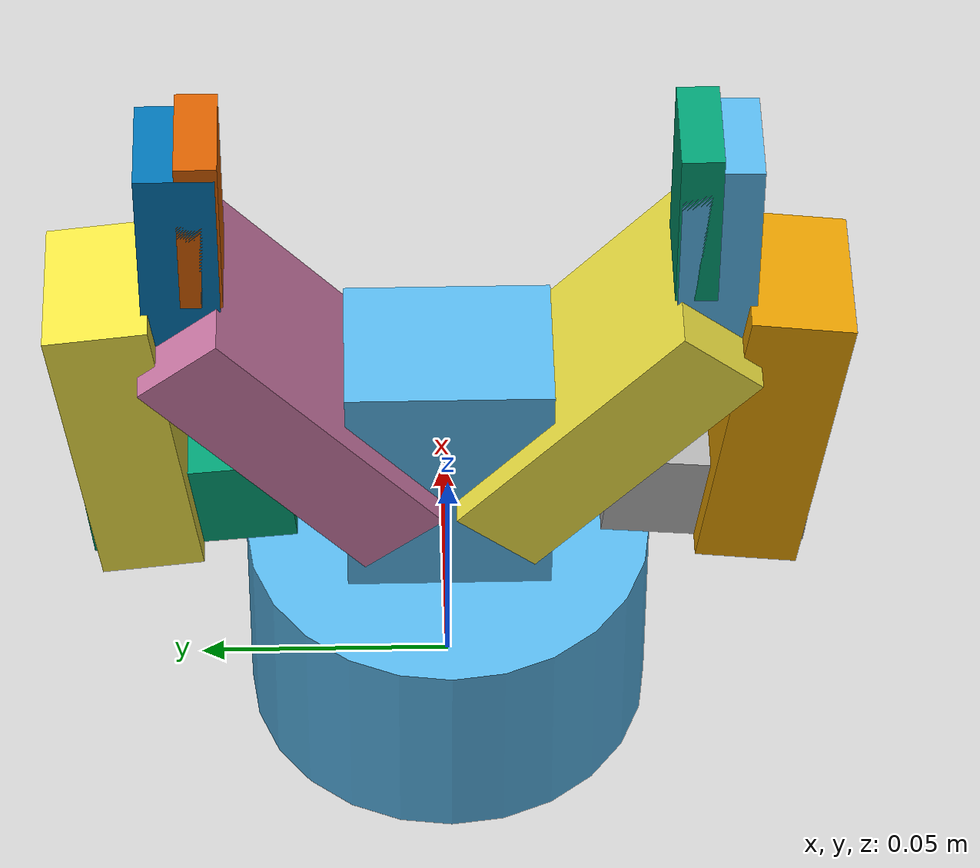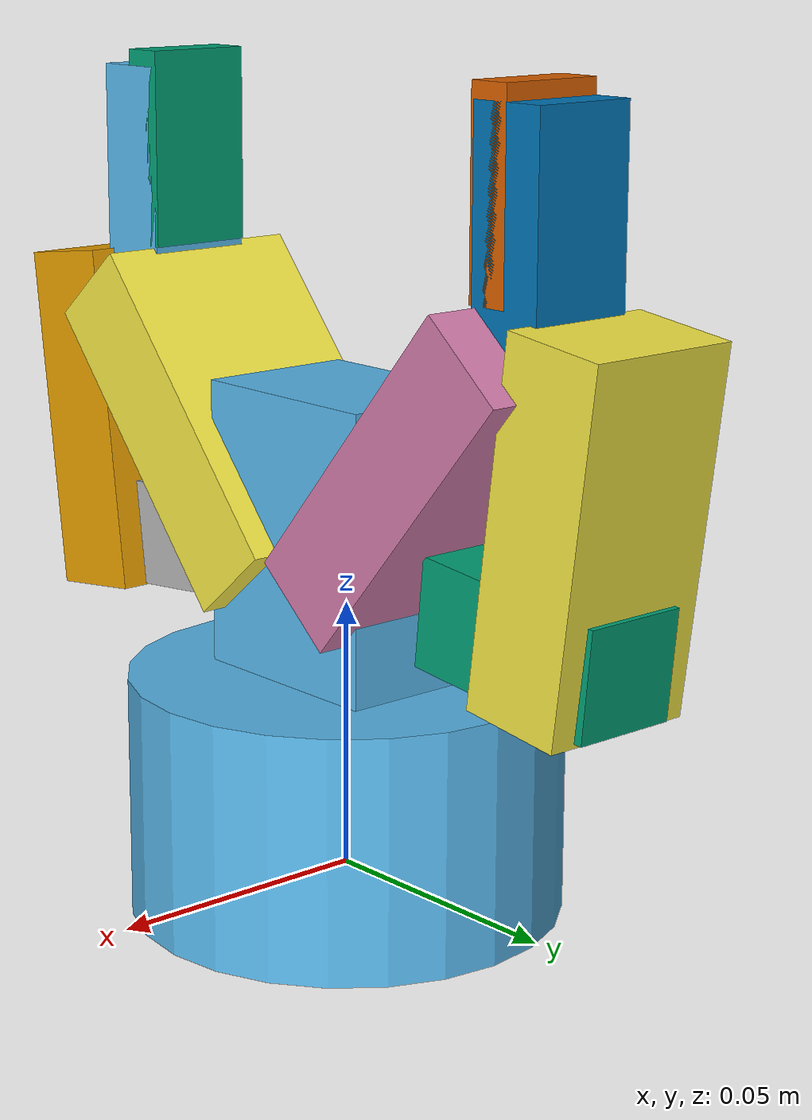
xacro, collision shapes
<?xml version="1.0" ?>
<robot name="example" xmlns:xacro="http://ros.org/wiki/xacro">

	<xacro:include filename="$(find robotiq_2f_model)/model/robotiq_2f_85.urdf.xacro" />

	<link name="world"/>

	<xacro:robotiq_2f_85 name="simple_gripper" joint_name="GRIPPER_JOINT" parent="world" precise_collision="false" adaptive_transmission="false">
		<origin xyz="0 0 0" rpy="0 0 0"/>
	</xacro:robotiq_2f_85>

</robot>

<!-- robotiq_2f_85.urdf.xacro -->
<robot xmlns:xacro="http://ros.org/wiki/xacro">

	<xacro:include filename="$(find robotiq_2f_model)/model/inertias.urdf.xacro" />

	<xacro:macro name="robotiq_2f_85" params="parent joint_name name precise_collision:=false adaptive_transmission:=false with_pads:=true *origin">

                <xacro:property name="gripper_kp" value="1000000.0" />
  		<xacro:property name="gripper_kd" value="1.5" />
  		<xacro:property name="gripper_mu" value="1.2" />

                <xacro:macro name="gazebo_params_gripper" params="name kp kd mu">
    			<gazebo reference="${name}">
      			<kp>${kp}</kp>
      			<kd>${kd}</kd>
      			<mu1>${mu}</mu1>
      			<mu2>${mu}</mu2>
    			</gazebo>
  		</xacro:macro>

		<!-- base -->
		<joint name="${parent}_${name}_BASE_joint" type="fixed">
			<xacro:insert_block name="origin"/>
			<parent link="${parent}"/>
			<child link="${name}_BASE"/>
		</joint>
		<link name="${name}_BASE">
			<inertial>
				<mass value="0.2"/>
				<origin xyz="0 0 ${0.015*0.5}"  />
				<cylinder_inertia radius="0.04" length="0.045" mass="0.2"/>
			</inertial>
			<visual>
				<geometry>
					<mesh filename="package://robotiq_2f_model/model/meshes/2f85/collision/base.stl" scale="0.001 0.001 0.001"/>
				</geometry>
			</visual>
			<xacro:unless value="${precise_collision}">
			<collision>
				<origin xyz="0 0 0.015" rpy="0 0 0"/>
				<geometry>
					<cylinder radius="0.04" length="0.045"/>
				</geometry>
			</collision>
			<collision>
				<origin xyz="0 0 0.06" rpy="0 0 0"/>
				<geometry>
					<box size="0.03 0.04 0.06"/>
				</geometry>
			</collision>
			</xacro:unless>
			<xacro:if value="${precise_collision}">
			<collision>
				<geometry>
					<mesh filename="package://robotiq_2f_model/model/meshes/2f85/collision/base.stl" scale="0.001 0.001 0.001"/>
				</geometry>
			</collision>
			</xacro:if>
		</link>
		<xacro:gazebo_params_gripper name="${name}_BASE" kp ="${gripper_kp}" kd="${gripper_kd}" mu="${gripper_mu}"/>

		<!-- right finger -->

		<joint name="${joint_name}" type="revolute">
			<origin xyz="0 0.0306011 0.054904" rpy="0 0 0"/>
			<parent link="${name}_BASE"/>
			<child link="${name}_right_driver"/>
			<axis xyz="1 0 0"/>
			<limit lower="${0 * 3.141592 / 180}" upper="${50 * 3.141592 / 180}" effort="60" velocity="${110 * 3.141592 / 180}" />
		</joint>
		<link name="${name}_right_driver">
			<inertial>
				<mass value="0.05"/>
				<origin xyz="0 0.02 0" rpy="0 0 0" />
				<box_inertia x_dim="0.02" y_dim="0.04" z_dim="0.02" mass="0.05"/>
			</inertial>
			<visual>
				<geometry>
					<mesh filename="package://robotiq_2f_model/model/meshes/2f85/visual/driver.dae" scale="0.001 0.001 0.001"/>
				</geometry>
			</visual>
			<xacro:unless value="${precise_collision}">
			<collision>
				<origin xyz="0 0.02 0" rpy="-0.1 0 0"/>
				<geometry>
					<box size="0.02 0.04 0.02"/>
				</geometry>
			</collision>
			</xacro:unless>
			<xacro:if value="${precise_collision}">
			<collision>
				<geometry>
					<mesh filename="package://robotiq_2f_model/model/meshes/2f85/collision/driver.stl" scale="0.001 0.001 0.001"/>
				</geometry>
			</collision>
			</xacro:if>
		</link>

		<xacro:unless value="${adaptive_transmission}">
		<joint name="${name}_right_coupler_joint" type="fixed">
			<origin xyz="0 0.0315 -0.0041" rpy="0 0 0"/>
			<parent link="${name}_right_driver"/>
			<child link="${name}_right_coupler"/>
		</joint>
		</xacro:unless>
		<xacro:if value="${adaptive_transmission}">
			<joint name="${name}_right_coupler_joint" type="revolute">
			<origin xyz="0 0.0315 -0.0041" rpy="0 0 0"/>
			<parent link="${name}_right_driver"/>
			<child link="${name}_right_coupler"/>
			<axis xyz="1 0 0"/>
			<limit lower="${-170 * 3.141592 / 180}" upper="${170 * 3.141592 / 180}" effort="176" velocity="${110 * 3.141592 / 180}" />
		</joint>
		</xacro:if>
		<link name="${name}_right_coupler">
			<inertial>
				<mass value="0.05"/>
				<origin xyz="0 0.0 0.025" rpy="-1.7 0 0"/>
				<box_inertia x_dim="0.03" y_dim="0.065" z_dim="0.02" mass="0.05"/>
			</inertial>
			<visual>
				<geometry>
					<mesh filename="package://robotiq_2f_model/model/meshes/2f85/visual/coupler.dae" scale="0.001 0.001 0.001"/>
				</geometry>
			</visual>
			<xacro:unless value="${precise_collision}">
			<collision>
				<origin xyz="0 0.0 0.025" rpy="-1.7 0 0"/>
				<geometry>
					<box size="0.03 0.065 0.02"/>
				</geometry>
			</collision>
			</xacro:unless>
			<xacro:if value="${precise_collision}">
				<collision>
					<geometry>
						<mesh filename="package://robotiq_2f_model/model/meshes/2f85/collision/coupler.stl" scale="0.001 0.001 0.001"/>
					</geometry>
				</collision>
			</xacro:if>
		</link>

		<joint name="${name}_right_follower_joint" type="revolute">
			<origin xyz="0 0.0061 0.0471" rpy="0 0 0"/>
			<parent link="${name}_right_coupler"/>
			<child link="${name}_right_follower"/>
			<axis xyz="1 0 0"/>
			<limit lower="${-170 * 3.141592 / 180}" upper="${170 * 3.141592 / 180}" effort="176" velocity="${110 * 3.141592 / 180}" />

			<xacro:unless value="${adaptive_transmission}">
			<mimic joint="${joint_name}" multiplier="-1"/>
			</xacro:unless>
		</joint>
		<link name="${name}_right_follower">
			<inertial>
				<mass value="0.05"/>
				<origin xyz="0 -0.018 0.022" />
				<box_inertia x_dim="0.02" y_dim="0.015" z_dim="0.048" mass="0.05"/>
			</inertial>
			<visual>
				<geometry>
					<mesh filename="package://robotiq_2f_model/model/meshes/2f85/visual/follower.dae" scale="0.001 0.001 0.001"/>
				</geometry>
			</visual>
			<xacro:unless value="${precise_collision}">
			<collision>
				<origin xyz="0 -0.018 0.022" rpy="0 0 0"/>
				<geometry>
					<box size="0.02 0.015 0.048"/>
				</geometry>
			</collision>
			</xacro:unless>
			<xacro:if value="${precise_collision}">
			<collision>
				<geometry>
					<mesh filename="package://robotiq_2f_model/model/meshes/2f85/collision/follower.stl" scale="0.001 0.001 0.001"/>
				</geometry>
			</collision>
			</xacro:if>
		</link>

		<xacro:if value="${with_pads}">
			<joint name="${name}_right_pad_joint" type="fixed">
				<parent link="${name}_right_follower"/>
				<child link="${name}_right_pad"/>
			</joint>
			<link name="${name}_right_pad">
				<inertial>
					<mass value="0.01"/>
					<origin xyz="0 -0.022 0.031" />
					<box_inertia x_dim="0.02" y_dim="0.008" z_dim="0.036" mass="0.01"/>
				</inertial>
				<visual>
					<geometry>
						<mesh filename="package://robotiq_2f_model/model/meshes/2f85/visual/pad.dae" scale="0.001 0.001 0.001"/>
					</geometry>
				</visual>
				<xacro:unless value="${precise_collision}">
				<collision>
					<origin xyz="0 -0.022 0.031" rpy="0 0 0"/>
					<geometry>
						<box size="0.02 0.008 0.036"/>
					</geometry>
				</collision>
				</xacro:unless>
				<xacro:if value="${precise_collision}">
				<collision>
					<geometry>
						<mesh filename="package://robotiq_2f_model/model/meshes/2f85/collision/pad.stl" scale="0.001 0.001 0.001"/>
					</geometry>
				</collision>
				</xacro:if>
			</link>
			<xacro:gazebo_params_gripper name="${name}_right_pad" kp ="${gripper_kp}" kd="${gripper_kd}" mu="${gripper_mu}"/>
		</xacro:if>

		<joint name="${name}_right_spring_link_joint" type="revolute">
			<origin xyz="0 0.012 0.0614" rpy="0 0 0"/>
			<parent link="${name}_BASE"/>
			<child link="${name}_right_spring_link"/>
			<axis xyz="1 0 0"/>
			<limit lower="${-170 * 3.141592 / 180}" upper="${170 * 3.141592 / 180}" effort="176" velocity="${110 * 3.141592 / 180}" />

			<xacro:unless value="${adaptive_transmission}">
			<mimic joint="${joint_name}" multiplier="1"/>
			</xacro:unless>
		</joint>
		<link name="${name}_right_spring_link">
			<inertial>
				<mass value="0.05"/>
				<origin xyz="0 0.018 0.018" rpy="-0.7068 0 0"/>
				<box_inertia x_dim="0.04" y_dim="0.02" z_dim="0.065" mass="0.05"/>
			</inertial>
			<visual>
				<geometry>
					<mesh filename="package://robotiq_2f_model/model/meshes/2f85/visual/spring_link.dae" scale="0.001 0.001 0.001"/>
				</geometry>
			</visual>
			<xacro:unless value="${precise_collision}">
			<collision>
				<origin xyz="0 0.018 0.018" rpy="-0.7068 0 0"/>
				<geometry>
					<box size="0.04 0.02 0.065"/>
				</geometry>
			</collision>
			</xacro:unless>
			<xacro:if value="${precise_collision}">
			<collision>
				<geometry>
					<mesh filename="package://robotiq_2f_model/model/meshes/2f85/collision/spring_link.stl" scale="0.001 0.001 0.001"/>
				</geometry>
			</collision>
			</xacro:if>
		</link>

		<!-- left finger -->

		<joint name="${name}_left_driver_joint" type="revolute">
			<origin xyz="0 -0.0306011 0.054904" rpy="0 0 3.141592653589793"/>
			<parent link="${name}_BASE"/>
			<child link="${name}_left_driver"/>
			<axis xyz="1 0 0"/>
			<limit lower="${0 * 3.141592 / 180}" upper="${50 * 3.141592 / 180}" effort="176" velocity="${110 * 3.141592 / 180}" />

			<xacro:unless value="${adaptive_transmission}">
			<mimic joint="${joint_name}" multiplier="1"/>
			</xacro:unless>
		</joint>
		<link name="${name}_left_driver">
			<inertial>
				<mass value="0.05"/>
				<origin xyz="0 0.02 0" rpy="0 0 0" />
				<box_inertia x_dim="0.02" y_dim="0.04" z_dim="0.02" mass="0.05"/>
			</inertial>
			<visual>
				<geometry>
					<mesh filename="package://robotiq_2f_model/model/meshes/2f85/visual/driver.dae" scale="0.001 0.001 0.001"/>
				</geometry>
			</visual>
			<xacro:unless value="${precise_collision}">
			<collision>
				<origin xyz="0 0.02 0" rpy="-0.1 0 0"/>
				<geometry>
					<box size="0.02 0.04 0.02"/>
				</geometry>
			</collision>
			</xacro:unless>
			<xacro:if value="${precise_collision}">
			<collision>
				<geometry>
					<mesh filename="package://robotiq_2f_model/model/meshes/2f85/collision/driver.stl" scale="0.001 0.001 0.001"/>
				</geometry>
			</collision>
			</xacro:if>
		</link>

		<xacro:unless value="${adaptive_transmission}">
		<joint name="${name}_left_coupler_joint" type="fixed">
			<origin xyz="0 0.0315 -0.0041" rpy="0 0 0"/>
			<parent link="${name}_left_driver"/>
			<child link="${name}_left_coupler"/>
		</joint>
		</xacro:unless>
		<xacro:if value="${adaptive_transmission}">
			<joint name="${name}_left_coupler_joint" type="revolute">
			<origin xyz="0 0.0315 -0.0041" rpy="0 0 0"/>
			<parent link="${name}_left_driver"/>
			<child link="${name}_left_coupler"/>
			<axis xyz="1 0 0"/>
			<limit lower="${-170 * 3.141592 / 180}" upper="${170 * 3.141592 / 180}" effort="176" velocity="${110 * 3.141592 / 180}" />
		</joint>
		</xacro:if>
		<link name="${name}_left_coupler">
			<inertial>
				<mass value="0.05"/>
				<origin xyz="0 0.0 0.025" rpy="-1.7 0 0"/>
				<box_inertia x_dim="0.03" y_dim="0.065" z_dim="0.02" mass="0.05"/>
			</inertial>
			<visual>
				<geometry>
					<mesh filename="package://robotiq_2f_model/model/meshes/2f85/visual/coupler.dae" scale="0.001 0.001 0.001"/>
				</geometry>
			</visual>
			<xacro:unless value="${precise_collision}">
			<collision>
				<origin xyz="0 0.0 0.025" rpy="-1.7 0 0"/>
				<geometry>
					<box size="0.03 0.065 0.02"/>
				</geometry>
			</collision>
			</xacro:unless>
			<xacro:if value="${precise_collision}">
				<collision>
					<geometry>
						<mesh filename="package://robotiq_2f_model/model/meshes/2f85/collision/coupler.stl" scale="0.001 0.001 0.001"/>
					</geometry>
				</collision>
			</xacro:if>
		</link>

		<joint name="${name}_left_follower_joint" type="revolute">
			<origin xyz="0 0.0061 0.0471" rpy="0 0 0"/>
			<parent link="${name}_left_coupler"/>
			<child link="${name}_left_follower"/>
			<axis xyz="1 0 0"/>
			<limit lower="${-170 * 3.141592 / 180}" upper="${170 * 3.141592 / 180}" effort="176" velocity="${110 * 3.141592 / 180}" />

			<xacro:unless value="${adaptive_transmission}">
			<mimic joint="${joint_name}" multiplier="-1"/>
			</xacro:unless>
		</joint>
		<link name="${name}_left_follower">
			<inertial>
				<mass value="0.05"/>
				<origin xyz="0 -0.018 0.022" />
				<box_inertia x_dim="0.02" y_dim="0.015" z_dim="0.048" mass="0.05"/>
			</inertial>
			<visual>
				<geometry>
					<mesh filename="package://robotiq_2f_model/model/meshes/2f85/visual/follower.dae" scale="0.001 0.001 0.001"/>
				</geometry>
			</visual>
			<xacro:unless value="${precise_collision}">
			<collision>
				<origin xyz="0 -0.018 0.022" rpy="0 0 0"/>
				<geometry>
					<box size="0.02 0.015 0.048"/>
				</geometry>
			</collision>
			</xacro:unless>
			<xacro:if value="${precise_collision}">
			<collision>
				<geometry>
					<mesh filename="package://robotiq_2f_model/model/meshes/2f85/collision/follower.stl" scale="0.001 0.001 0.001"/>
				</geometry>
			</collision>
			</xacro:if>
		</link>

		<xacro:if value="${with_pads}">
			<joint name="${name}_left_pad_joint" type="fixed">
				<parent link="${name}_left_follower"/>
				<child link="${name}_left_pad"/>
			</joint>
			<link name="${name}_left_pad">
				<inertial>
					<mass value="0.01"/>
					<origin xyz="0 -0.022 0.031" />
					<box_inertia x_dim="0.02" y_dim="0.008" z_dim="0.036" mass="0.01"/>
				</inertial>
				<visual>
					<geometry>
						<mesh filename="package://robotiq_2f_model/model/meshes/2f85/visual/pad.dae" scale="0.001 0.001 0.001"/>
					</geometry>
				</visual>
				<xacro:unless value="${precise_collision}">
				<collision>
					<origin xyz="0 -0.022 0.031" rpy="0 0 0"/>
					<geometry>
						<box size="0.02 0.008 0.036"/>
					</geometry>
				</collision>
				</xacro:unless>
				<xacro:if value="${precise_collision}">
				<collision>
					<geometry>
						<mesh filename="package://robotiq_2f_model/model/meshes/2f85/collision/pad.stl" scale="0.001 0.001 0.001"/>
					</geometry>
				</collision>
				</xacro:if>
			</link>
			<xacro:gazebo_params_gripper name="${name}_left_pad" kp ="${gripper_kp}" kd="${gripper_kd}" mu="${gripper_mu}"/>
		</xacro:if>

		<joint name="${name}_left_spring_link_joint" type="revolute">
			<origin xyz="0 -0.012 0.0614" rpy="0 0 3.141592653589793"/>
			<parent link="${name}_BASE"/>
			<child link="${name}_left_spring_link"/>
			<axis xyz="1 0 0"/>
			<limit lower="${-170 * 3.141592 / 180}" upper="${170 * 3.141592 / 180}" effort="176" velocity="${110 * 3.141592 / 180}" />

			<xacro:unless value="${adaptive_transmission}">
			<mimic joint="${joint_name}" multiplier="1"/>
			</xacro:unless>
		</joint>
		<link name="${name}_left_spring_link">
			<inertial>
				<mass value="0.05"/>
				<origin xyz="0 0.018 0.018" rpy="-0.7068 0 0"/>
				<box_inertia x_dim="0.04" y_dim="0.02" z_dim="0.065" mass="0.05"/>
			</inertial>
			<visual>
				<geometry>
					<mesh filename="package://robotiq_2f_model/model/meshes/2f85/visual/spring_link.dae" scale="0.001 0.001 0.001"/>
				</geometry>
			</visual>
			<xacro:unless value="${precise_collision}">
			<collision>
				<origin xyz="0 0.018 0.018" rpy="-0.7068 0 0"/>
				<geometry>
					<box size="0.04 0.02 0.065"/>
				</geometry>
			</collision>
			</xacro:unless>
			<xacro:if value="${precise_collision}">
			<collision>
				<geometry>
					<mesh filename="package://robotiq_2f_model/model/meshes/2f85/collision/spring_link.stl" scale="0.001 0.001 0.001"/>
				</geometry>
			</collision>
			</xacro:if>
		</link>

		<xacro:unless value="${adaptive_transmission}">
			<transmission name="${name}_right_driver_trans">
				<type>transmission_interface/SimpleTransmission</type>
				<joint name="${joint_name}">
					<hardwareInterface>hardware_interface/PositionJointInterface</hardwareInterface>
				</joint>
				<actuator name="${name}_right_driver_motor">
					<mechanicalReduction>1</mechanicalReduction>
				</actuator>
			</transmission>

			<gazebo>
				<plugin name="${name}_right_follower_joint_plugin" filename="libroboticsgroup_gazebo_mimic_joint_plugin.so">
					<joint>${joint_name}</joint>
					<mimicJoint>${name}_right_follower_joint</mimicJoint>
					<hasPID />
					<multiplier>-1</multiplier>
				</plugin>
				<plugin name="${name}_right_spring_link_joint_plugin" filename="libroboticsgroup_gazebo_mimic_joint_plugin.so">
					<joint>${joint_name}</joint>
					<mimicJoint>${name}_right_spring_link_joint</mimicJoint>
					<hasPID />
					<multiplier>1</multiplier>
				</plugin>
				<plugin name="${name}_left_follower_joint_plugin" filename="libroboticsgroup_gazebo_mimic_joint_plugin.so">
					<joint>${joint_name}</joint>
					<mimicJoint>${name}_left_follower_joint</mimicJoint>
					<hasPID />
					<multiplier>-1</multiplier>
				</plugin>
				<plugin name="${name}_left_spring_link_joint_plugin" filename="libroboticsgroup_gazebo_mimic_joint_plugin.so">
					<joint>${joint_name}</joint>
					<mimicJoint>${name}_left_spring_link_joint</mimicJoint>
					<hasPID />
					<multiplier>1</multiplier>
				</plugin>
				<plugin name="${name}_left_driver_joint_plugin" filename="libroboticsgroup_gazebo_mimic_joint_plugin.so">
					<joint>${joint_name}</joint>
					<mimicJoint>${name}_left_driver_joint</mimicJoint>
					<hasPID />
					<multiplier>1</multiplier>
				</plugin>
			</gazebo>
		</xacro:unless>
	</xacro:macro>
</robot>
